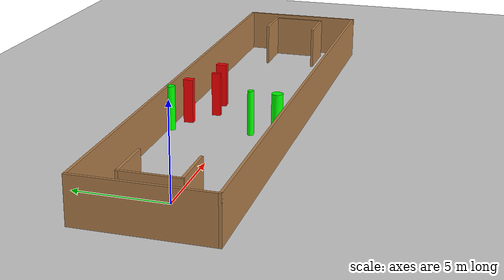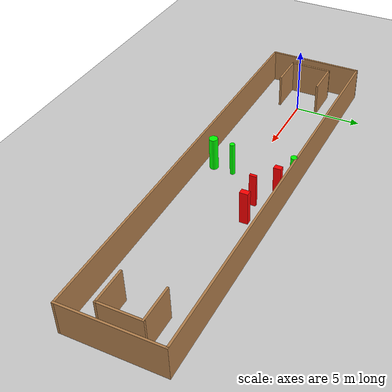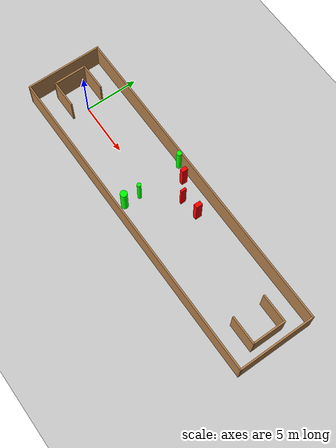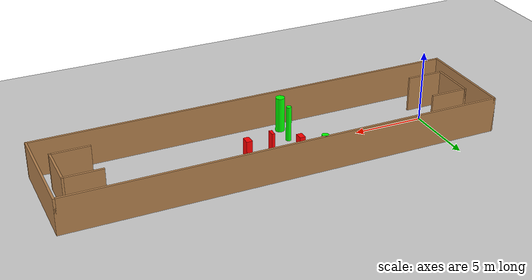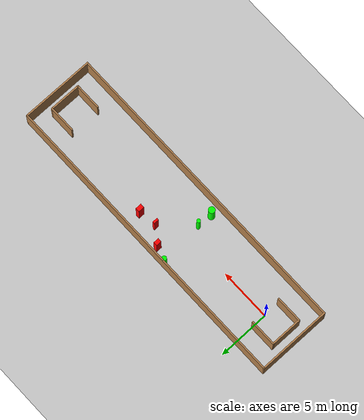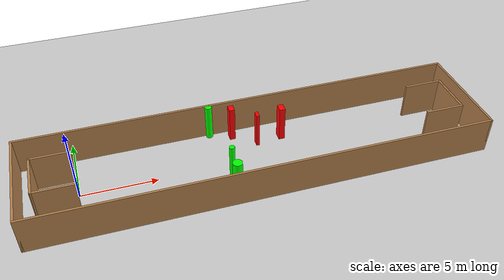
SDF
<sdf version="1.7">
 <world name="default">
  <light name="sun" type="directional">
   <pose>0 0 10 0 -0 0</pose>
   <diffuse>0.8 0.8 0.8 1</diffuse>
   <specular>0.2 0.2 0.2 1</specular>
   <attenuation>
    <range>1000</range>
    <constant>0.9</constant>
    <linear>0.01</linear>
    <quadratic>0.001</quadratic>
   </attenuation>
   <direction>-0.5 0.1 -0.9</direction>
   <spot><inner_angle>0</inner_angle><outer_angle>0</outer_angle><falloff>0</falloff></spot>
  </light>
  <model name="ground_plane">
   <static>1</static>
   <link name="link">
    <collision name="collision">
     <geometry><plane><normal>0 0 1</normal><size>100 100</size></plane></geometry>
     <surface>
      <contact><collide_bitmask>65535</collide_bitmask></contact>
      <friction><ode><mu>100</mu><mu2>50</mu2></ode></friction>
     </surface>
    </collision>
    <visual name="visual">
     <cast_shadows>0</cast_shadows>
     <geometry><plane><normal>0 0 1</normal><size>100 100</size></plane></geometry>
     <material>
      <script><uri>file://media/materials/scripts/gazebo.material</uri><name>Gazebo/Grey</name></script>
     </material>
    </visual>
   </link>
  </model>
  <gravity>0 0 -9.8</gravity>
  <magnetic_field>6e-06 2.3e-05 -4.2e-05</magnetic_field>
  <atmosphere type="adiabatic"/>
  <physics type="ode">
   <max_step_size>0.001</max_step_size>
   <real_time_factor>1</real_time_factor>
   <real_time_update_rate>1000</real_time_update_rate>
  </physics>
  <scene><ambient>0.4 0.4 0.4 1</ambient><background>0.7 0.7 0.7 1</background><shadows>1</shadows></scene>
  <spherical_coordinates>
   <surface_model>EARTH_WGS84</surface_model>
   <latitude_deg>0</latitude_deg>
   <longitude_deg>0</longitude_deg>
   <elevation>0</elevation>
   <heading_deg>0</heading_deg>
  </spherical_coordinates>
  <model name="my_base_walls">
   <link name="Wall_0">
    <collision name="Wall_0_Collision">
     <geometry><box><size>7.15 0.15 2.5</size></box></geometry>
     <pose>0 0 1.25 0 -0 0</pose>
    </collision>
    <visual name="Wall_0_Visual">
     <pose>0 0 1.25 0 -0 0</pose>
     <geometry><box><size>7.15 0.15 2.5</size></box></geometry>
     <material>
      <script><uri>file://media/materials/scripts/gazebo.material</uri><name>Gazebo/Wood</name></script>
      <ambient>1 1 1 1</ambient>
     </material>
     <meta><layer>0</layer></meta>
    </visual>
    <pose>-15 0 0 0 -0 1.5708</pose>
   </link>
   <link name="Wall_10">
    <collision name="Wall_10_Collision">
     <geometry><box><size>2.65 0.15 2.5</size></box></geometry>
     <pose>0 0 1.25 0 -0 0</pose>
    </collision>
    <visual name="Wall_10_Visual">
     <pose>0 0 1.25 0 -0 0</pose>
     <geometry><box><size>2.65 0.15 2.5</size></box></geometry>
     <material>
      <script><uri>file://media/materials/scripts/gazebo.material</uri><name>Gazebo/Wood</name></script>
      <ambient>1 1 1 1</ambient>
     </material>
     <meta><layer>0</layer></meta>
    </visual>
    <pose>-12.75 -1.5 0 0 -0 0</pose>
   </link>
   <link name="Wall_12">
    <collision name="Wall_12_Collision">
     <geometry><box><size>2.65 0.15 2.5</size></box></geometry>
     <pose>0 0 1.25 0 -0 0</pose>
    </collision>
    <visual name="Wall_12_Visual">
     <pose>0 0 1.25 0 -0 0</pose>
     <geometry><box><size>2.65 0.15 2.5</size></box></geometry>
     <material>
      <script><uri>file://media/materials/scripts/gazebo.material</uri><name>Gazebo/Wood</name></script>
      <ambient>1 1 1 1</ambient>
     </material>
     <meta><layer>0</layer></meta>
    </visual>
    <pose>-12.75 1.5 0 0 -0 0</pose>
   </link>
   <link name="Wall_14">
    <collision name="Wall_14_Collision">
     <geometry><box><size>3.15 0.15 2.5</size></box></geometry>
     <pose>0 0 1.25 0 -0 0</pose>
    </collision>
    <visual name="Wall_14_Visual">
     <pose>0 0 1.25 0 -0 0</pose>
     <geometry><box><size>3.15 0.15 2.5</size></box></geometry>
     <material>
      <script><uri>file://media/materials/scripts/gazebo.material</uri><name>Gazebo/Wood</name></script>
      <ambient>1 1 1 1</ambient>
     </material>
     <meta><layer>0</layer></meta>
    </visual>
    <pose>14 0 0 0 -0 -1.5708</pose>
   </link>
   <link name="Wall_15">
    <collision name="Wall_15_Collision">
     <geometry><box><size>2.65 0.15 2.5</size></box></geometry>
     <pose>0 0 1.25 0 -0 0</pose>
    </collision>
    <visual name="Wall_15_Visual">
     <pose>0 0 1.25 0 -0 0</pose>
     <geometry><box><size>2.65 0.15 2.5</size></box></geometry>
     <material>
      <script><uri>file://media/materials/scripts/gazebo.material</uri><name>Gazebo/Wood</name></script>
      <ambient>1 1 1 1</ambient>
     </material>
     <meta><layer>0</layer></meta>
    </visual>
    <pose>12.75 -1.5 0 0 -0 3.14159</pose>
   </link>
   <link name="Wall_17">
    <collision name="Wall_17_Collision">
     <geometry><box><size>2.65 0.15 2.5</size></box></geometry>
     <pose>0 0 1.25 0 -0 0</pose>
    </collision>
    <visual name="Wall_17_Visual">
     <pose>0 0 1.25 0 -0 0</pose>
     <geometry><box><size>2.65 0.15 2.5</size></box></geometry>
     <material>
      <script><uri>file://media/materials/scripts/gazebo.material</uri><name>Gazebo/Wood</name></script>
      <ambient>1 1 1 1</ambient>
     </material>
     <meta><layer>0</layer></meta>
    </visual>
    <pose>12.75 1.5 0 0 -0 3.14159</pose>
   </link>
   <link name="Wall_2">
    <collision name="Wall_2_Collision">
     <geometry><box><size>30.15 0.15 2.5</size></box></geometry>
     <pose>0 0 1.25 0 -0 0</pose>
    </collision>
    <visual name="Wall_2_Visual">
     <pose>0 0 1.25 0 -0 0</pose>
     <geometry><box><size>30.15 0.15 2.5</size></box></geometry>
     <material>
      <script><uri>file://media/materials/scripts/gazebo.material</uri><name>Gazebo/Wood</name></script>
      <ambient>1 1 1 1</ambient>
     </material>
     <meta><layer>0</layer></meta>
    </visual>
    <pose>-0 -3.5 0 0 -0 0</pose>
   </link>
   <link name="Wall_4">
    <collision name="Wall_4_Collision">
     <geometry><box><size>30.15 0.15 2.5</size></box></geometry>
     <pose>0 0 1.25 0 -0 0</pose>
    </collision>
    <visual name="Wall_4_Visual">
     <pose>0 0 1.25 0 -0 0</pose>
     <geometry><box><size>30.15 0.15 2.5</size></box></geometry>
     <material>
      <script><uri>file://media/materials/scripts/gazebo.material</uri><name>Gazebo/Wood</name></script>
      <ambient>1 1 1 1</ambient>
     </material>
     <meta><layer>0</layer></meta>
    </visual>
    <pose>-0 3.5 0 0 -0 0</pose>
   </link>
   <link name="Wall_6">
    <collision name="Wall_6_Collision">
     <geometry><box><size>7.15 0.15 2.5</size></box></geometry>
     <pose>0 0 1.25 0 -0 0</pose>
    </collision>
    <visual name="Wall_6_Visual">
     <pose>0 0 1.25 0 -0 0</pose>
     <geometry><box><size>7.15 0.15 2.5</size></box></geometry>
     <material>
      <script><uri>file://media/materials/scripts/gazebo.material</uri><name>Gazebo/Wood</name></script>
      <ambient>1 1 1 1</ambient>
     </material>
     <meta><layer>0</layer></meta>
    </visual>
    <pose>15 0 0 0 -0 -1.5708</pose>
   </link>
   <link name="Wall_9">
    <collision name="Wall_9_Collision">
     <geometry><box><size>3.15 0.15 2.5</size></box></geometry>
     <pose>0 0 1.25 0 -0 0</pose>
    </collision>
    <visual name="Wall_9_Visual">
     <pose>0 0 1.25 0 -0 0</pose>
     <geometry><box><size>3.15 0.15 2.5</size></box></geometry>
     <material>
      <script><uri>file://media/materials/scripts/gazebo.material</uri><name>Gazebo/Wood</name></script>
      <ambient>1 1 1 1</ambient>
     </material>
     <meta><layer>0</layer></meta>
    </visual>
    <pose>-14 0 0 0 -0 -1.5708</pose>
   </link>
   <static>1</static>
   <pose>11.5 0 0 0 -0 0</pose>
  </model>
  <model name="cylinder1">
   <static>1</static>
   <link name="link">
    <inertial>
     <mass>1</mass>
     <inertia><ixx>0.5</ixx><ixy>0</ixy><ixz>0</ixz><iyy>0.5</iyy><iyz>0</iyz><izz>1</izz></inertia>
    </inertial>
    <collision name="collision">
     <geometry><cylinder><radius>0.1824280507480602</radius><length>2.5</length></cylinder></geometry>
    </collision>
    <visual name="visual">
     <geometry><cylinder><radius>0.1824280507480602</radius><length>2.5</length></cylinder></geometry>
     <material>
      <ambient>0 1 0 1</ambient>
      <diffuse>0 1 0 1</diffuse>
      <specular>0.1 0.1 0.1 1</specular>
      <emissive>0 0 0 0</emissive>
     </material>
    </visual>
   </link>
   <pose>9.612783259465392 -1.077135021967206 1.25 0 0 0</pose>
  </model>
  <model name="cylinder2">
   <static>1</static>
   <link name="link">
    <inertial>
     <mass>1</mass>
     <inertia><ixx>0.5</ixx><ixy>0</ixy><ixz>0</ixz><iyy>0.5</iyy><iyz>0</iyz><izz>1</izz></inertia>
    </inertial>
    <collision name="collision">
     <geometry><cylinder><radius>0.23451578488780517</radius><length>2.5</length></cylinder></geometry>
    </collision>
    <visual name="visual">
     <geometry><cylinder><radius>0.23451578488780517</radius><length>2.5</length></cylinder></geometry>
     <material>
      <ambient>0 1 0 1</ambient>
      <diffuse>0 1 0 1</diffuse>
      <specular>0.1 0.1 0.1 1</specular>
      <emissive>0 0 0 0</emissive>
     </material>
    </visual>
   </link>
   <pose>9.178184044045079 3.313222468391679 1.25 0 0 0</pose>
  </model>
  <model name="cylinder3">
   <static>1</static>
   <link name="link">
    <inertial>
     <mass>1</mass>
     <inertia><ixx>0.5</ixx><ixy>0</ixy><ixz>0</ixz><iyy>0.5</iyy><iyz>0</iyz><izz>1</izz></inertia>
    </inertial>
    <collision name="collision">
     <geometry><cylinder><radius>0.313526199041124</radius><length>2.5</length></cylinder></geometry>
    </collision>
    <visual name="visual">
     <geometry><cylinder><radius>0.313526199041124</radius><length>2.5</length></cylinder></geometry>
     <material>
      <ambient>0 1 0 1</ambient>
      <diffuse>0 1 0 1</diffuse>
      <specular>0.1 0.1 0.1 1</specular>
      <emissive>0 0 0 0</emissive>
     </material>
    </visual>
   </link>
   <pose>9.551775649879676 -2.5591552987310204 1.25 0 0 0</pose>
  </model>
  <model name="box1">
   <static>1</static>
   <link name="link">
    <inertial>
     <mass>1</mass>
     <inertia><ixx>0.083</ixx><ixy>0</ixy><ixz>0</ixz><iyy>0.083</iyy><iyz>0</iyz><izz>0.083</izz></inertia>
    </inertial>
    <collision name="collision">
     <geometry><box><size>0.2097914332298664 0.5024899295100845 2.5</size></box></geometry>
    </collision>
    <visual name="visual">
     <geometry><box><size>0.2097914332298664 0.5024899295100845 2.5</size></box></geometry>
     <material>
      <ambient>1 0 0 1</ambient>
      <diffuse>1 0 0 1</diffuse>
      <specular>0.1 0.1 0.1 1</specular>
      <emissive>0 0 0 0</emissive>
     </material>
    </visual>
    <sensor name="my_contact" type="contact">
     <contact><collision>box_collision</collision><topic>__default_topic__</topic></contact>
    </sensor>
   </link>
   <pose>12.090032432262745 1.6288696095245934 1.25 0 0 0</pose>
  </model>
  <model name="box2">
   <static>1</static>
   <link name="link">
    <inertial>
     <mass>1</mass>
     <inertia><ixx>0.083</ixx><ixy>0</ixy><ixz>0</ixz><iyy>0.083</iyy><iyz>0</iyz><izz>0.083</izz></inertia>
    </inertial>
    <collision name="collision">
     <geometry><box><size>0.39766351401486677 0.5956308193167121 2.5</size></box></geometry>
    </collision>
    <visual name="visual">
     <geometry><box><size>0.39766351401486677 0.5956308193167121 2.5</size></box></geometry>
     <material>
      <ambient>1 0 0 1</ambient>
      <diffuse>1 0 0 1</diffuse>
      <specular>0.1 0.1 0.1 1</specular>
      <emissive>0 0 0 0</emissive>
     </material>
    </visual>
    <sensor name="my_contact" type="contact">
     <contact><collision>box_collision</collision><topic>__default_topic__</topic></contact>
    </sensor>
   </link>
   <pose>13.848710282162509 1.8566699279187135 1.25 0 0 0</pose>
  </model>
  <model name="box3">
   <static>1</static>
   <link name="link">
    <inertial>
     <mass>1</mass>
     <inertia><ixx>0.083</ixx><ixy>0</ixy><ixz>0</ixz><iyy>0.083</iyy><iyz>0</iyz><izz>0.083</izz></inertia>
    </inertial>
    <collision name="collision">
     <geometry><box><size>0.37203500610925827 0.5348517384168832 2.5</size></box></geometry>
    </collision>
    <visual name="visual">
     <geometry><box><size>0.37203500610925827 0.5348517384168832 2.5</size></box></geometry>
     <material>
      <ambient>1 0 0 1</ambient>
      <diffuse>1 0 0 1</diffuse>
      <specular>0.1 0.1 0.1 1</specular>
      <emissive>0 0 0 0</emissive>
     </material>
    </visual>
    <sensor name="my_contact" type="contact">
     <contact><collision>box_collision</collision><topic>__default_topic__</topic></contact>
    </sensor>
   </link>
   <pose>10.617002062139116 2.764875036183157 1.25 0 0 0</pose>
  </model>
 </world>
</sdf>
